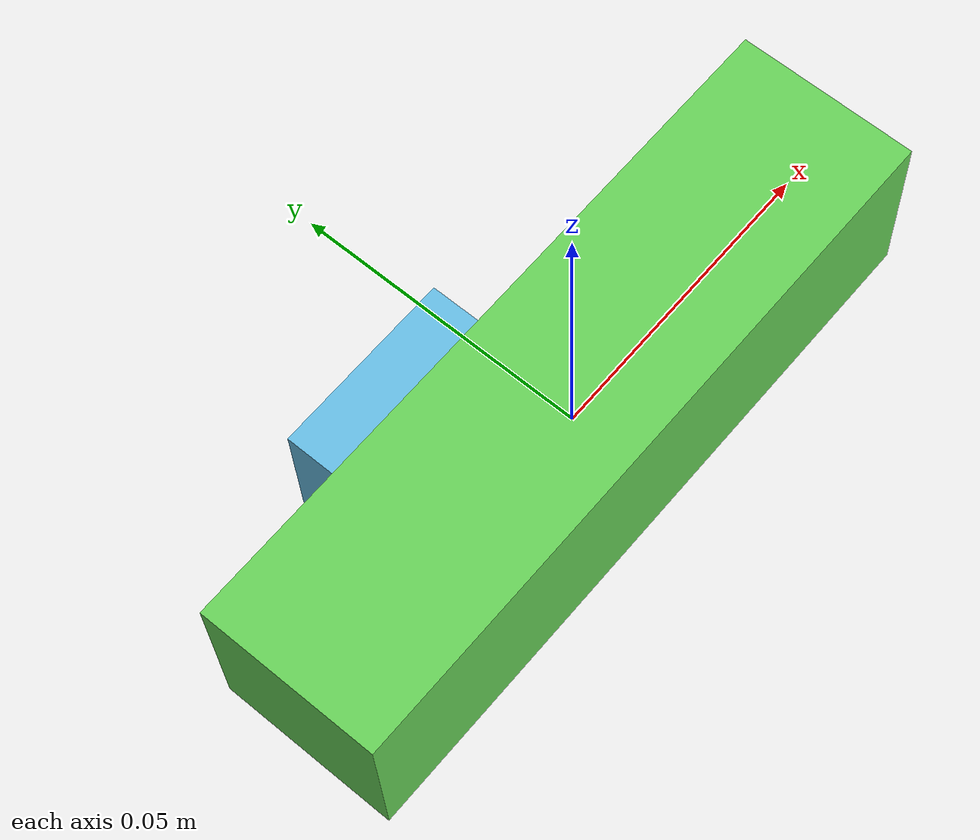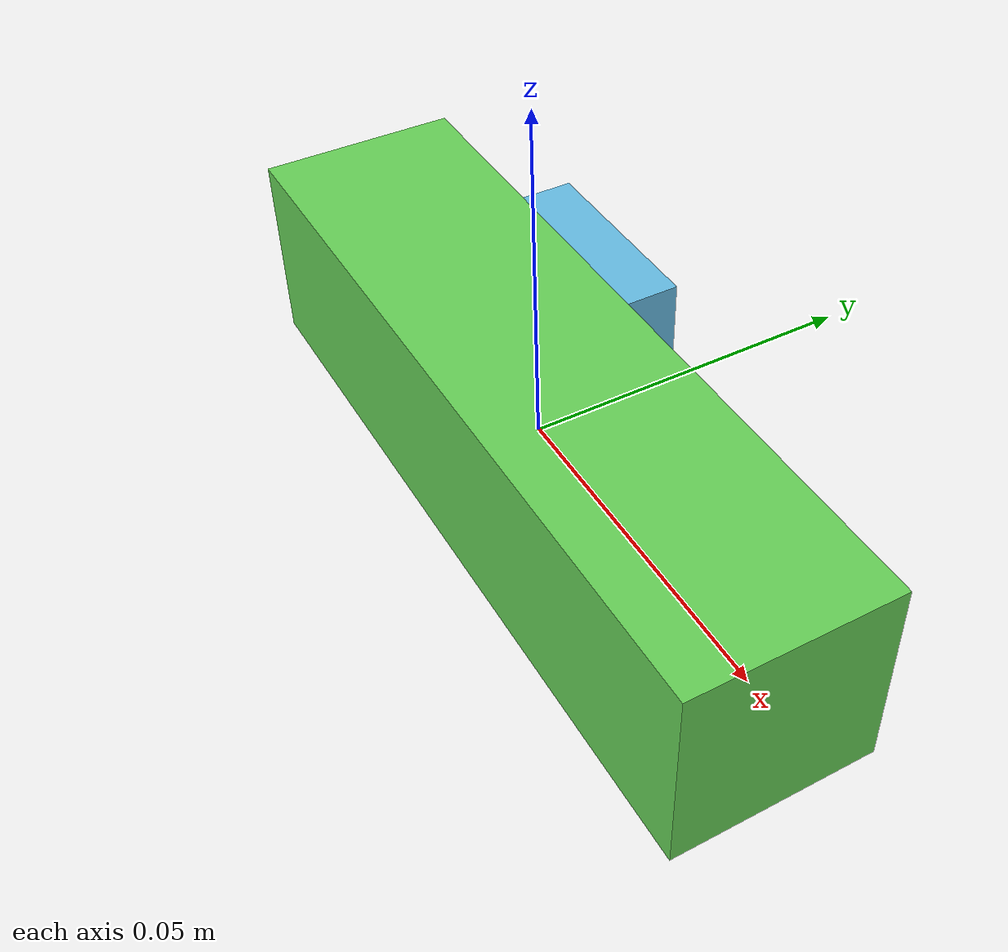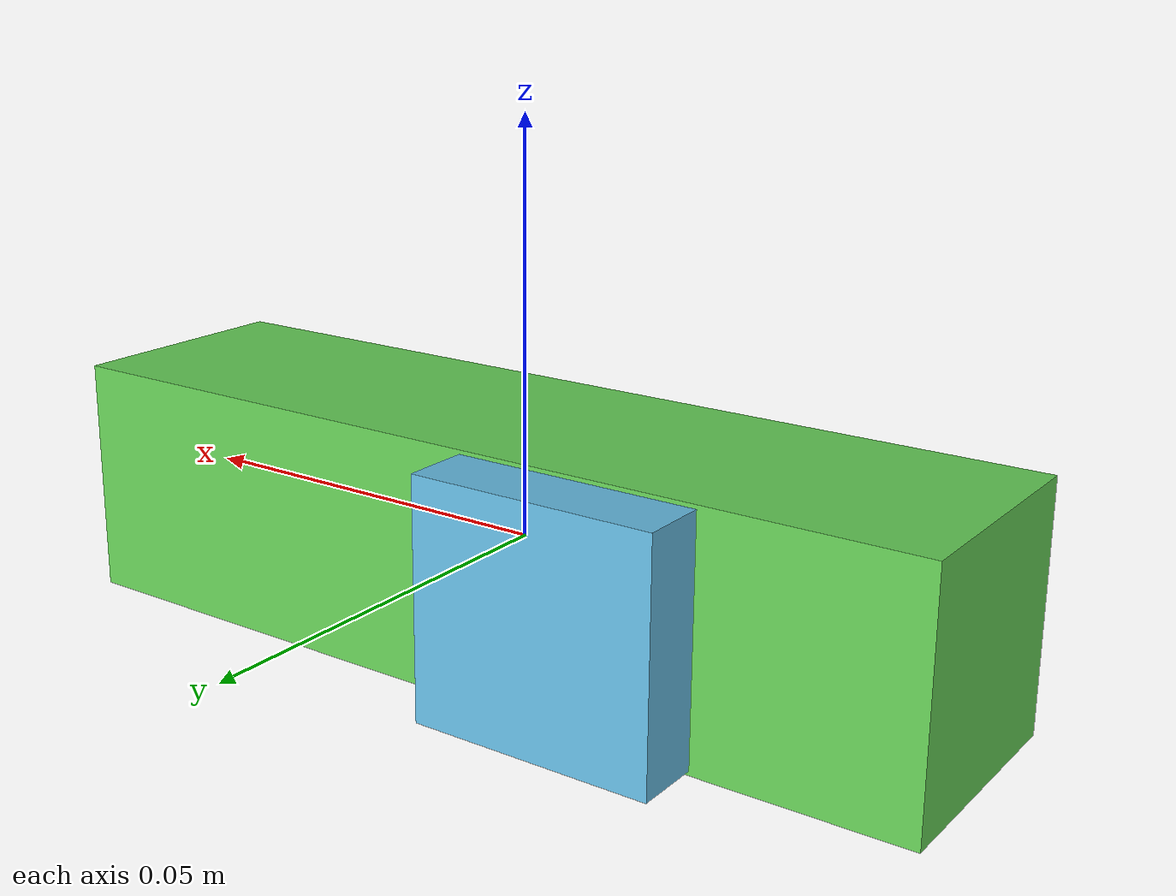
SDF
<sdf version="1.4"><world name="default"><model name="object0"><link name="link1"><pose>0 0 0 0 0 0</pose><inertial><pose>0 0 0 0 0 0</pose><mass>0.06244367447850318</mass><inertia><ixx>9.366551171775477e-06</ixx><ixy>0</ixy><iyy>7.426522430904804e-05</iyy><ixz>0</ixz><iyz>0</iyz><izz>7.426522430904804e-05</izz></inertia></inertial><visual name="link1_visual"><pose>0 0  0 0 0 0</pose><geometry><box><size>0.11563643421945034 0.03 0.03</size></box></geometry><material><diffuse>0.4043059922087675 0.8221458333253282 0.34671334441588664 1</diffuse></material></visual><collision><pose>0 0  0 0 0 0</pose><geometry><box><size>0.11563643421945034 0.03 0.03</size></box></geometry></collision></link><link name="link2"><pose>-0.017043109743131432 0.0056034671909462146 0 0 0 0</pose><inertial><pose>0 0 0 0 0 0</pose><mass>0.01906404673893072</mass><inertia><ixx>3.3161235809791365e-06</ixx><ixy>0</ixy><iyy>2.765875447706532e-06</iyy><ixz>0</ixz><iyz>0</iyz><izz>3.4098551441122125e-06</izz></inertia></inertial><visual name="link2_visual"><pose>0 0  0 0 0 0</pose><geometry><box><size>0.03 0.035303790257279116 0.028999999999999998</size></box></geometry><material><diffuse>0.402547125030968 0.7431953096671011 0.8972625848408957 1</diffuse></material></visual><collision><pose>0 0  0 0 0 0</pose><geometry><box><size>0.03 0.035303790257279116 0.028999999999999998</size></box></geometry></collision></link><joint name="link_joint_0" type="fixed"><parent>link1</parent><child>link2</child><pose>0 0 0 0 0 0</pose><axis><xyz>0 0 1</xyz></axis></joint></model></world></sdf>
